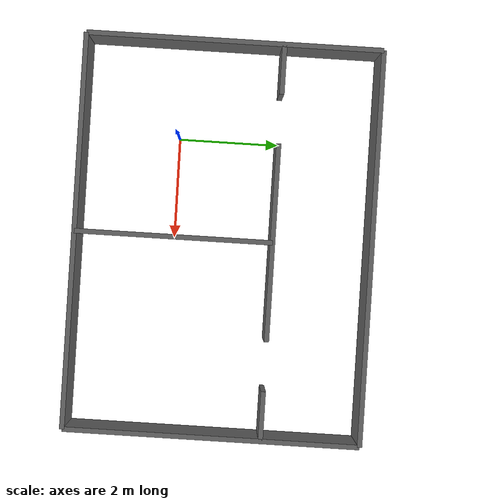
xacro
<?xml version="1.0"?>

<!--
 Preview:
     ______7_________
    |                |
    |__  ________  __|
    |3      | 2     4|
   6|   0   |        |8
    |   .   |1       |
    |_______|________|
          5
-->

<robot xmlns:xacro="http://www.ros.org/wiki/xacro" name="two_rooms">

    <xacro:include filename="$(find ropod_sim)/world_description/wall.xacro" />

    <link name="wall_0"/>

    <xacro:wall name="wall_1" parent="wall_0" length="4.0">
        <origin xyz="2.0 0.0 0.0" rpy="0.0 0.0 ${pi/2}"/>
    </xacro:wall>

    <xacro:wall name="wall_2" parent="wall_0" length="4.0">
        <origin xyz="2.0 2.0 0.0" rpy="0.0 0.0 0.0"/>
    </xacro:wall>

    <xacro:wall name="wall_3" parent="wall_0" length="1.0">
        <origin xyz="-1.5 2.0 0.0" rpy="0.0 0.0 0.0"/>
    </xacro:wall>

    <xacro:wall name="wall_4" parent="wall_0" length="1.0">
        <origin xyz="5.5 2.0 0.0" rpy="0.0 0.0 0.0"/>
    </xacro:wall>

    <xacro:wall name="wall_5" parent="wall_0" length="8.0">
        <origin xyz="2.0 -2.0 0.0" rpy="0.0 0.0 0.0"/>
    </xacro:wall>

    <xacro:wall name="wall_6" parent="wall_0" length="6.0">
        <origin xyz="-2.0 1.0 0.0" rpy="0.0 0.0 ${pi/2}"/>
    </xacro:wall>

    <xacro:wall name="wall_7" parent="wall_0" length="8.0">
        <origin xyz="2.0 4.0 0.0" rpy="0.0 0.0 0.0"/>
    </xacro:wall>

    <xacro:wall name="wall_8" parent="wall_0" length="6.0">
        <origin xyz="6.0 1.0 0.0" rpy="0.0 0.0 ${pi/2}"/>
    </xacro:wall>

</robot>

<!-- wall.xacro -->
<root xmlns:xacro="http://www.ros.org/wiki/xacro">

    <!-- density of concrete (kg/m^3) -->
    <xacro:property name="density" value="2100" />
    <xacro:property name="default_width" value="0.1" />
    <xacro:property name="default_height" value="1.0" />

    <material name="grey">
        <color rgba="0.4 0.4 0.4 1.0"/>
    </material>

    <xacro:macro name="cuboid_inertia" params="length width height density:=^">
        <inertial>
            <mass value="${density*length*width*height}" />
            <inertia ixx="${(density*length*width*height/12)*(width*width + height*height)}"
                     iyy="${(density*length*width*height/12)*(height*height + length*length)}"
                     iyz="0.0" ixy="0.0" ixz="0.0"
                     izz="${(density*length*width*height/12)*(width*width + length*length)}" />
        </inertial>
    </xacro:macro>

    <xacro:macro name="wall" params="name parent *origin length width:=${default_width} height:=${default_height}">
        <joint name="joint_${name}" type="fixed">
            <xacro:insert_block name="origin" />
            <parent link="${parent}"/>
            <child link="${name}"/>
        </joint>
        <link name="${name}">
            <visual>
                <origin xyz="0 0 0"/>
                <geometry>
                    <box size="${length} ${width} ${height}" />
                </geometry>
                <material name="grey"/>
            </visual>
            <collision>
                <origin xyz="0 0 0"/>
                <geometry>
                    <box size="${length} ${width} ${height}" />
                </geometry>
            </collision>
            <xacro:cuboid_inertia length="${length}" width="${width}" height="${height}" />
        </link>
        <gazebo reference="${name}">
            <material>Gazebo/White</material>
            <selfCollide>false</selfCollide>
        </gazebo>
    </xacro:macro>

</root>
